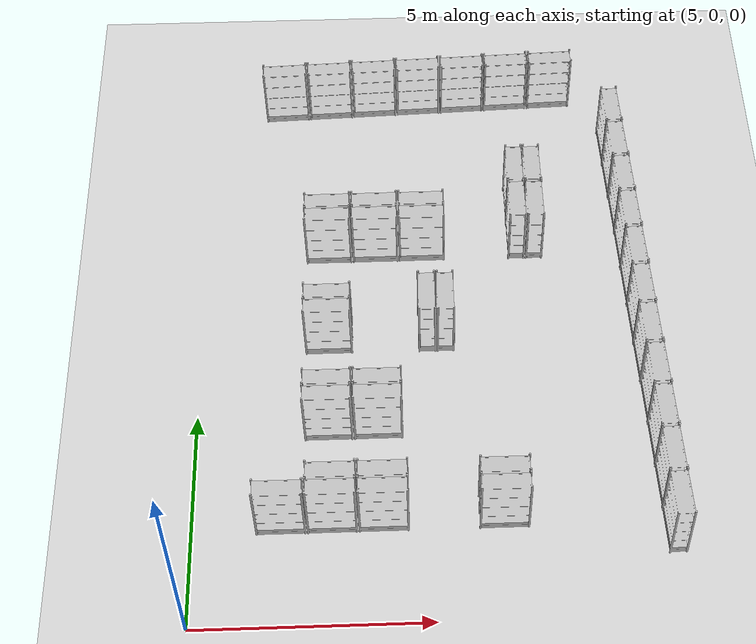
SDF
<sdf version="1.6">
 <world name="default">
  <model name="ground_plane">
   <static>1</static>
   <link name="link">
    <collision name="collision">
     <geometry><plane><normal>0 0 1</normal><size>100 100</size></plane></geometry>
     <surface>
      <contact><collide_bitmask>65535</collide_bitmask></contact>
      <friction><ode><mu>1000</mu><mu2>1000</mu2></ode></friction>
     </surface>
    </collision>
    <visual name="visual">
     <cast_shadows>0</cast_shadows>
     <geometry><plane><normal>0 0 1</normal><size>100 100</size></plane></geometry>
     <material>
      <script><uri>file://media/materials/scripts/gazebo.material</uri><name>Gazebo/Grey</name></script>
     </material>
    </visual>
   </link>
  </model>
  <model name="store_shelf_moduled_0">
   <link name="link">
    <collision name="collision">
     <geometry><mesh><uri>model://store_shelf_moduled/meshes/store_shelf_moduled.dae</uri></mesh></geometry>
    </collision>
    <visual name="visual">
     <geometry><mesh><uri>model://store_shelf_moduled/meshes/store_shelf_moduled.dae</uri></mesh></geometry>
    </visual>
    <inertial>
     <mass>1000</mass>
     <inertia>
      <ixx>840083</ixx>
      <ixy>0</ixy>
      <ixz>0</ixz>
      <iyy>475500</iyy>
      <iyz>0</iyz>
      <izz>1.30208e+06</izz>
     </inertia>
    </inertial>
   </link>
   <static>1</static>
   <pose>15.15008 1.396037 0 0 0 1.610436</pose>
  </model>
  <model name="store_shelf_moduled_1">
   <link name="link">
    <collision name="collision">
     <geometry><mesh><uri>model://store_shelf_moduled/meshes/store_shelf_moduled.dae</uri></mesh></geometry>
    </collision>
    <visual name="visual">
     <geometry><mesh><uri>model://store_shelf_moduled/meshes/store_shelf_moduled.dae</uri></mesh></geometry>
    </visual>
    <inertial>
     <mass>1000</mass>
     <inertia>
      <ixx>840083</ixx>
      <ixy>0</ixy>
      <ixz>0</ixz>
      <iyy>475500</iyy>
      <iyz>0</iyz>
      <izz>1.30208e+06</izz>
     </inertia>
    </inertial>
   </link>
   <static>1</static>
   <pose>15.11008 2.456037 0 0 0 1.610436</pose>
  </model>
  <model name="store_shelf_moduled_2">
   <link name="link">
    <collision name="collision">
     <geometry><mesh><uri>model://store_shelf_moduled/meshes/store_shelf_moduled.dae</uri></mesh></geometry>
    </collision>
    <visual name="visual">
     <geometry><mesh><uri>model://store_shelf_moduled/meshes/store_shelf_moduled.dae</uri></mesh></geometry>
    </visual>
    <inertial>
     <mass>1000</mass>
     <inertia>
      <ixx>840083</ixx>
      <ixy>0</ixy>
      <ixz>0</ixz>
      <iyy>475500</iyy>
      <iyz>0</iyz>
      <izz>1.30208e+06</izz>
     </inertia>
    </inertial>
   </link>
   <static>1</static>
   <pose>15.07008 3.516037 0 0 0 1.610436</pose>
  </model>
  <model name="store_shelf_moduled_3">
   <link name="link">
    <collision name="collision">
     <geometry><mesh><uri>model://store_shelf_moduled/meshes/store_shelf_moduled.dae</uri></mesh></geometry>
    </collision>
    <visual name="visual">
     <geometry><mesh><uri>model://store_shelf_moduled/meshes/store_shelf_moduled.dae</uri></mesh></geometry>
    </visual>
    <inertial>
     <mass>1000</mass>
     <inertia>
      <ixx>840083</ixx>
      <ixy>0</ixy>
      <ixz>0</ixz>
      <iyy>475500</iyy>
      <iyz>0</iyz>
      <izz>1.30208e+06</izz>
     </inertia>
    </inertial>
   </link>
   <static>1</static>
   <pose>15.03008 4.576037 0 0 0 1.610436</pose>
  </model>
  <model name="store_shelf_moduled_4">
   <link name="link">
    <collision name="collision">
     <geometry><mesh><uri>model://store_shelf_moduled/meshes/store_shelf_moduled.dae</uri></mesh></geometry>
    </collision>
    <visual name="visual">
     <geometry><mesh><uri>model://store_shelf_moduled/meshes/store_shelf_moduled.dae</uri></mesh></geometry>
    </visual>
    <inertial>
     <mass>1000</mass>
     <inertia>
      <ixx>840083</ixx>
      <ixy>0</ixy>
      <ixz>0</ixz>
      <iyy>475500</iyy>
      <iyz>0</iyz>
      <izz>1.30208e+06</izz>
     </inertia>
    </inertial>
   </link>
   <static>1</static>
   <pose>14.98008 5.636037 0 0 0 1.610436</pose>
  </model>
  <model name="store_shelf_moduled_5">
   <link name="link">
    <collision name="collision">
     <geometry><mesh><uri>model://store_shelf_moduled/meshes/store_shelf_moduled.dae</uri></mesh></geometry>
    </collision>
    <visual name="visual">
     <geometry><mesh><uri>model://store_shelf_moduled/meshes/store_shelf_moduled.dae</uri></mesh></geometry>
    </visual>
    <inertial>
     <mass>1000</mass>
     <inertia>
      <ixx>840083</ixx>
      <ixy>0</ixy>
      <ixz>0</ixz>
      <iyy>475500</iyy>
      <iyz>0</iyz>
      <izz>1.30208e+06</izz>
     </inertia>
    </inertial>
   </link>
   <static>1</static>
   <pose>14.94008 6.696037 0 0 0 1.610436</pose>
  </model>
  <model name="store_shelf_moduled_6">
   <link name="link">
    <collision name="collision">
     <geometry><mesh><uri>model://store_shelf_moduled/meshes/store_shelf_moduled.dae</uri></mesh></geometry>
    </collision>
    <visual name="visual">
     <geometry><mesh><uri>model://store_shelf_moduled/meshes/store_shelf_moduled.dae</uri></mesh></geometry>
    </visual>
    <inertial>
     <mass>1000</mass>
     <inertia>
      <ixx>840083</ixx>
      <ixy>0</ixy>
      <ixz>0</ixz>
      <iyy>475500</iyy>
      <iyz>0</iyz>
      <izz>1.30208e+06</izz>
     </inertia>
    </inertial>
   </link>
   <static>1</static>
   <pose>14.90008 7.756037 0 0 0 1.610436</pose>
  </model>
  <model name="store_shelf_moduled_7">
   <link name="link">
    <collision name="collision">
     <geometry><mesh><uri>model://store_shelf_moduled/meshes/store_shelf_moduled.dae</uri></mesh></geometry>
    </collision>
    <visual name="visual">
     <geometry><mesh><uri>model://store_shelf_moduled/meshes/store_shelf_moduled.dae</uri></mesh></geometry>
    </visual>
    <inertial>
     <mass>1000</mass>
     <inertia>
      <ixx>840083</ixx>
      <ixy>0</ixy>
      <ixz>0</ixz>
      <iyy>475500</iyy>
      <iyz>0</iyz>
      <izz>1.30208e+06</izz>
     </inertia>
    </inertial>
   </link>
   <static>1</static>
   <pose>14.86008 8.816037 0 0 0 1.610436</pose>
  </model>
  <model name="store_shelf_moduled_8">
   <link name="link">
    <collision name="collision">
     <geometry><mesh><uri>model://store_shelf_moduled/meshes/store_shelf_moduled.dae</uri></mesh></geometry>
    </collision>
    <visual name="visual">
     <geometry><mesh><uri>model://store_shelf_moduled/meshes/store_shelf_moduled.dae</uri></mesh></geometry>
    </visual>
    <inertial>
     <mass>1000</mass>
     <inertia>
      <ixx>840083</ixx>
      <ixy>0</ixy>
      <ixz>0</ixz>
      <iyy>475500</iyy>
      <iyz>0</iyz>
      <izz>1.30208e+06</izz>
     </inertia>
    </inertial>
   </link>
   <static>1</static>
   <pose>14.82008 9.876037 0 0 0 1.610436</pose>
  </model>
  <model name="store_shelf_moduled_9">
   <link name="link">
    <collision name="collision">
     <geometry><mesh><uri>model://store_shelf_moduled/meshes/store_shelf_moduled.dae</uri></mesh></geometry>
    </collision>
    <visual name="visual">
     <geometry><mesh><uri>model://store_shelf_moduled/meshes/store_shelf_moduled.dae</uri></mesh></geometry>
    </visual>
    <inertial>
     <mass>1000</mass>
     <inertia>
      <ixx>840083</ixx>
      <ixy>0</ixy>
      <ixz>0</ixz>
      <iyy>475500</iyy>
      <iyz>0</iyz>
      <izz>1.30208e+06</izz>
     </inertia>
    </inertial>
   </link>
   <static>1</static>
   <pose>14.77008 10.93604 0 0 0 1.610436</pose>
  </model>
  <model name="store_shelf_moduled_10">
   <link name="link">
    <collision name="collision">
     <geometry><mesh><uri>model://store_shelf_moduled/meshes/store_shelf_moduled.dae</uri></mesh></geometry>
    </collision>
    <visual name="visual">
     <geometry><mesh><uri>model://store_shelf_moduled/meshes/store_shelf_moduled.dae</uri></mesh></geometry>
    </visual>
    <inertial>
     <mass>1000</mass>
     <inertia>
      <ixx>840083</ixx>
      <ixy>0</ixy>
      <ixz>0</ixz>
      <iyy>475500</iyy>
      <iyz>0</iyz>
      <izz>1.30208e+06</izz>
     </inertia>
    </inertial>
   </link>
   <static>1</static>
   <pose>14.73008 11.99604 0 0 0 1.610436</pose>
  </model>
  <model name="store_shelf_moduled_11">
   <link name="link">
    <collision name="collision">
     <geometry><mesh><uri>model://store_shelf_moduled/meshes/store_shelf_moduled.dae</uri></mesh></geometry>
    </collision>
    <visual name="visual">
     <geometry><mesh><uri>model://store_shelf_moduled/meshes/store_shelf_moduled.dae</uri></mesh></geometry>
    </visual>
    <inertial>
     <mass>1000</mass>
     <inertia>
      <ixx>840083</ixx>
      <ixy>0</ixy>
      <ixz>0</ixz>
      <iyy>475500</iyy>
      <iyz>0</iyz>
      <izz>1.30208e+06</izz>
     </inertia>
    </inertial>
   </link>
   <static>1</static>
   <pose>13.68382 14.32007 0 0 0 -3.10336</pose>
  </model>
  <model name="store_shelf_moduled_12">
   <link name="link">
    <collision name="collision">
     <geometry><mesh><uri>model://store_shelf_moduled/meshes/store_shelf_moduled.dae</uri></mesh></geometry>
    </collision>
    <visual name="visual">
     <geometry><mesh><uri>model://store_shelf_moduled/meshes/store_shelf_moduled.dae</uri></mesh></geometry>
    </visual>
    <inertial>
     <mass>1000</mass>
     <inertia>
      <ixx>840083</ixx>
      <ixy>0</ixy>
      <ixz>0</ixz>
      <iyy>475500</iyy>
      <iyz>0</iyz>
      <izz>1.30208e+06</izz>
     </inertia>
    </inertial>
   </link>
   <static>1</static>
   <pose>12.62382 14.28007 0 0 0 -3.10336</pose>
  </model>
  <model name="store_shelf_moduled_13">
   <link name="link">
    <collision name="collision">
     <geometry><mesh><uri>model://store_shelf_moduled/meshes/store_shelf_moduled.dae</uri></mesh></geometry>
    </collision>
    <visual name="visual">
     <geometry><mesh><uri>model://store_shelf_moduled/meshes/store_shelf_moduled.dae</uri></mesh></geometry>
    </visual>
    <inertial>
     <mass>1000</mass>
     <inertia>
      <ixx>840083</ixx>
      <ixy>0</ixy>
      <ixz>0</ixz>
      <iyy>475500</iyy>
      <iyz>0</iyz>
      <izz>1.30208e+06</izz>
     </inertia>
    </inertial>
   </link>
   <static>1</static>
   <pose>11.56382 14.24007 0 0 0 -3.10336</pose>
  </model>
  <model name="store_shelf_moduled_14">
   <link name="link">
    <collision name="collision">
     <geometry><mesh><uri>model://store_shelf_moduled/meshes/store_shelf_moduled.dae</uri></mesh></geometry>
    </collision>
    <visual name="visual">
     <geometry><mesh><uri>model://store_shelf_moduled/meshes/store_shelf_moduled.dae</uri></mesh></geometry>
    </visual>
    <inertial>
     <mass>1000</mass>
     <inertia>
      <ixx>840083</ixx>
      <ixy>0</ixy>
      <ixz>0</ixz>
      <iyy>475500</iyy>
      <iyz>0</iyz>
      <izz>1.30208e+06</izz>
     </inertia>
    </inertial>
   </link>
   <static>1</static>
   <pose>10.50382 14.20007 0 0 0 -3.10336</pose>
  </model>
  <model name="store_shelf_moduled_15">
   <link name="link">
    <collision name="collision">
     <geometry><mesh><uri>model://store_shelf_moduled/meshes/store_shelf_moduled.dae</uri></mesh></geometry>
    </collision>
    <visual name="visual">
     <geometry><mesh><uri>model://store_shelf_moduled/meshes/store_shelf_moduled.dae</uri></mesh></geometry>
    </visual>
    <inertial>
     <mass>1000</mass>
     <inertia>
      <ixx>840083</ixx>
      <ixy>0</ixy>
      <ixz>0</ixz>
      <iyy>475500</iyy>
      <iyz>0</iyz>
      <izz>1.30208e+06</izz>
     </inertia>
    </inertial>
   </link>
   <static>1</static>
   <pose>9.443823 14.16007 0 0 0 -3.10336</pose>
  </model>
  <model name="store_shelf_moduled_16">
   <link name="link">
    <collision name="collision">
     <geometry><mesh><uri>model://store_shelf_moduled/meshes/store_shelf_moduled.dae</uri></mesh></geometry>
    </collision>
    <visual name="visual">
     <geometry><mesh><uri>model://store_shelf_moduled/meshes/store_shelf_moduled.dae</uri></mesh></geometry>
    </visual>
    <inertial>
     <mass>1000</mass>
     <inertia>
      <ixx>840083</ixx>
      <ixy>0</ixy>
      <ixz>0</ixz>
      <iyy>475500</iyy>
      <iyz>0</iyz>
      <izz>1.30208e+06</izz>
     </inertia>
    </inertial>
   </link>
   <static>1</static>
   <pose>8.383822 14.12007 0 0 0 -3.10336</pose>
  </model>
  <model name="store_shelf_moduled_17">
   <link name="link">
    <collision name="collision">
     <geometry><mesh><uri>model://store_shelf_moduled/meshes/store_shelf_moduled.dae</uri></mesh></geometry>
    </collision>
    <visual name="visual">
     <geometry><mesh><uri>model://store_shelf_moduled/meshes/store_shelf_moduled.dae</uri></mesh></geometry>
    </visual>
    <inertial>
     <mass>1000</mass>
     <inertia>
      <ixx>840083</ixx>
      <ixy>0</ixy>
      <ixz>0</ixz>
      <iyy>475500</iyy>
      <iyz>0</iyz>
      <izz>1.30208e+06</izz>
     </inertia>
    </inertial>
   </link>
   <static>1</static>
   <pose>7.323822 14.08007 0 0 0 -3.10336</pose>
  </model>
  <model name="store_shelf_moduled_33">
   <link name="link">
    <collision name="collision">
     <geometry><mesh><uri>model://store_shelf_moduled/meshes/store_shelf_moduled.dae</uri></mesh></geometry>
    </collision>
    <visual name="visual">
     <geometry><mesh><uri>model://store_shelf_moduled/meshes/store_shelf_moduled.dae</uri></mesh></geometry>
    </visual>
    <inertial>
     <mass>1000</mass>
     <inertia>
      <ixx>840083</ixx>
      <ixy>0</ixy>
      <ixz>0</ixz>
      <iyy>475500</iyy>
      <iyz>0</iyz>
      <izz>1.30208e+06</izz>
     </inertia>
    </inertial>
   </link>
   <static>1</static>
   <pose>7.29 4.75 0 0 0 0</pose>
  </model>
  <model name="store_shelf_moduled_34">
   <link name="link">
    <collision name="collision">
     <geometry><mesh><uri>model://store_shelf_moduled/meshes/store_shelf_moduled.dae</uri></mesh></geometry>
    </collision>
    <visual name="visual">
     <geometry><mesh><uri>model://store_shelf_moduled/meshes/store_shelf_moduled.dae</uri></mesh></geometry>
    </visual>
    <inertial>
     <mass>1000</mass>
     <inertia>
      <ixx>840083</ixx>
      <ixy>0</ixy>
      <ixz>0</ixz>
      <iyy>475500</iyy>
      <iyz>0</iyz>
      <izz>1.30208e+06</izz>
     </inertia>
    </inertial>
   </link>
   <static>1</static>
   <pose>8.35 4.75 0 0 0 -3.141593</pose>
  </model>
  <model name="store_shelf_moduled_35">
   <link name="link">
    <collision name="collision">
     <geometry><mesh><uri>model://store_shelf_moduled/meshes/store_shelf_moduled.dae</uri></mesh></geometry>
    </collision>
    <visual name="visual">
     <geometry><mesh><uri>model://store_shelf_moduled/meshes/store_shelf_moduled.dae</uri></mesh></geometry>
    </visual>
    <inertial>
     <mass>1000</mass>
     <inertia>
      <ixx>840083</ixx>
      <ixy>0</ixy>
      <ixz>0</ixz>
      <iyy>475500</iyy>
      <iyz>0</iyz>
      <izz>1.30208e+06</izz>
     </inertia>
    </inertial>
   </link>
   <static>1</static>
   <pose>8.35 4.75 0 0 0 0</pose>
  </model>
  <model name="store_shelf_moduled_36">
   <link name="link">
    <collision name="collision">
     <geometry><mesh><uri>model://store_shelf_moduled/meshes/store_shelf_moduled.dae</uri></mesh></geometry>
    </collision>
    <visual name="visual">
     <geometry><mesh><uri>model://store_shelf_moduled/meshes/store_shelf_moduled.dae</uri></mesh></geometry>
    </visual>
    <inertial>
     <mass>1000</mass>
     <inertia>
      <ixx>840083</ixx>
      <ixy>0</ixy>
      <ixz>0</ixz>
      <iyy>475500</iyy>
      <iyz>0</iyz>
      <izz>1.30208e+06</izz>
     </inertia>
    </inertial>
   </link>
   <static>1</static>
   <pose>9.41 4.75 0 0 0 -3.141593</pose>
  </model>
  <model name="store_shelf_moduled_37">
   <link name="link">
    <collision name="collision">
     <geometry><mesh><uri>model://store_shelf_moduled/meshes/store_shelf_moduled.dae</uri></mesh></geometry>
    </collision>
    <visual name="visual">
     <geometry><mesh><uri>model://store_shelf_moduled/meshes/store_shelf_moduled.dae</uri></mesh></geometry>
    </visual>
    <inertial>
     <mass>1000</mass>
     <inertia>
      <ixx>840083</ixx>
      <ixy>0</ixy>
      <ixz>0</ixz>
      <iyy>475500</iyy>
      <iyz>0</iyz>
      <izz>1.30208e+06</izz>
     </inertia>
    </inertial>
   </link>
   <static>1</static>
   <pose>7.29 9.57 0 0 0 0</pose>
  </model>
  <model name="store_shelf_moduled_38">
   <link name="link">
    <collision name="collision">
     <geometry><mesh><uri>model://store_shelf_moduled/meshes/store_shelf_moduled.dae</uri></mesh></geometry>
    </collision>
    <visual name="visual">
     <geometry><mesh><uri>model://store_shelf_moduled/meshes/store_shelf_moduled.dae</uri></mesh></geometry>
    </visual>
    <inertial>
     <mass>1000</mass>
     <inertia>
      <ixx>840083</ixx>
      <ixy>0</ixy>
      <ixz>0</ixz>
      <iyy>475500</iyy>
      <iyz>0</iyz>
      <izz>1.30208e+06</izz>
     </inertia>
    </inertial>
   </link>
   <static>1</static>
   <pose>8.35 9.57 0 0 0 -3.141593</pose>
  </model>
  <model name="store_shelf_moduled_39">
   <link name="link">
    <collision name="collision">
     <geometry><mesh><uri>model://store_shelf_moduled/meshes/store_shelf_moduled.dae</uri></mesh></geometry>
    </collision>
    <visual name="visual">
     <geometry><mesh><uri>model://store_shelf_moduled/meshes/store_shelf_moduled.dae</uri></mesh></geometry>
    </visual>
    <inertial>
     <mass>1000</mass>
     <inertia>
      <ixx>840083</ixx>
      <ixy>0</ixy>
      <ixz>0</ixz>
      <iyy>475500</iyy>
      <iyz>0</iyz>
      <izz>1.30208e+06</izz>
     </inertia>
    </inertial>
   </link>
   <static>1</static>
   <pose>8.35 9.57 0 0 0 0</pose>
  </model>
  <model name="store_shelf_moduled_40">
   <link name="link">
    <collision name="collision">
     <geometry><mesh><uri>model://store_shelf_moduled/meshes/store_shelf_moduled.dae</uri></mesh></geometry>
    </collision>
    <visual name="visual">
     <geometry><mesh><uri>model://store_shelf_moduled/meshes/store_shelf_moduled.dae</uri></mesh></geometry>
    </visual>
    <inertial>
     <mass>1000</mass>
     <inertia>
      <ixx>840083</ixx>
      <ixy>0</ixy>
      <ixz>0</ixz>
      <iyy>475500</iyy>
      <iyz>0</iyz>
      <izz>1.30208e+06</izz>
     </inertia>
    </inertial>
   </link>
   <static>1</static>
   <pose>9.41 9.57 0 0 0 -3.141593</pose>
  </model>
  <model name="store_shelf_moduled_41">
   <link name="link">
    <collision name="collision">
     <geometry><mesh><uri>model://store_shelf_moduled/meshes/store_shelf_moduled.dae</uri></mesh></geometry>
    </collision>
    <visual name="visual">
     <geometry><mesh><uri>model://store_shelf_moduled/meshes/store_shelf_moduled.dae</uri></mesh></geometry>
    </visual>
    <inertial>
     <mass>1000</mass>
     <inertia>
      <ixx>840083</ixx>
      <ixy>0</ixy>
      <ixz>0</ixz>
      <iyy>475500</iyy>
      <iyz>0</iyz>
      <izz>1.30208e+06</izz>
     </inertia>
    </inertial>
   </link>
   <static>1</static>
   <pose>9.41 9.57 0 0 0 0</pose>
  </model>
  <model name="store_shelf_moduled_42">
   <link name="link">
    <collision name="collision">
     <geometry><mesh><uri>model://store_shelf_moduled/meshes/store_shelf_moduled.dae</uri></mesh></geometry>
    </collision>
    <visual name="visual">
     <geometry><mesh><uri>model://store_shelf_moduled/meshes/store_shelf_moduled.dae</uri></mesh></geometry>
    </visual>
    <inertial>
     <mass>1000</mass>
     <inertia>
      <ixx>840083</ixx>
      <ixy>0</ixy>
      <ixz>0</ixz>
      <iyy>475500</iyy>
      <iyz>0</iyz>
      <izz>1.30208e+06</izz>
     </inertia>
    </inertial>
   </link>
   <static>1</static>
   <pose>10.47 9.57 0 0 0 -3.141593</pose>
  </model>
  <model name="store_shelf_moduled_52">
   <link name="link">
    <collision name="collision">
     <geometry><mesh><uri>model://store_shelf_moduled/meshes/store_shelf_moduled.dae</uri></mesh></geometry>
    </collision>
    <visual name="visual">
     <geometry><mesh><uri>model://store_shelf_moduled/meshes/store_shelf_moduled.dae</uri></mesh></geometry>
    </visual>
    <inertial>
     <mass>1000</mass>
     <inertia>
      <ixx>840083</ixx>
      <ixy>0</ixy>
      <ixz>0</ixz>
      <iyy>475500</iyy>
      <iyz>0</iyz>
      <izz>1.30208e+06</izz>
     </inertia>
    </inertial>
   </link>
   <static>1</static>
   <pose>7.37 2.49 0 0 0 -3.141593</pose>
  </model>
  <model name="store_shelf_moduled_53">
   <link name="link">
    <collision name="collision">
     <geometry><mesh><uri>model://store_shelf_moduled/meshes/store_shelf_moduled.dae</uri></mesh></geometry>
    </collision>
    <visual name="visual">
     <geometry><mesh><uri>model://store_shelf_moduled/meshes/store_shelf_moduled.dae</uri></mesh></geometry>
    </visual>
    <inertial>
     <mass>1000</mass>
     <inertia>
      <ixx>840083</ixx>
      <ixy>0</ixy>
      <ixz>0</ixz>
      <iyy>475500</iyy>
      <iyz>0</iyz>
      <izz>1.30208e+06</izz>
     </inertia>
    </inertial>
   </link>
   <static>1</static>
   <pose>7.37 2.49 0 0 0 0</pose>
  </model>
  <model name="store_shelf_moduled_54">
   <link name="link">
    <collision name="collision">
     <geometry><mesh><uri>model://store_shelf_moduled/meshes/store_shelf_moduled.dae</uri></mesh></geometry>
    </collision>
    <visual name="visual">
     <geometry><mesh><uri>model://store_shelf_moduled/meshes/store_shelf_moduled.dae</uri></mesh></geometry>
    </visual>
    <inertial>
     <mass>1000</mass>
     <inertia>
      <ixx>840083</ixx>
      <ixy>0</ixy>
      <ixz>0</ixz>
      <iyy>475500</iyy>
      <iyz>0</iyz>
      <izz>1.30208e+06</izz>
     </inertia>
    </inertial>
   </link>
   <static>1</static>
   <pose>8.43 2.49 0 0 0 -3.141593</pose>
  </model>
  <model name="store_shelf_moduled_55">
   <link name="link">
    <collision name="collision">
     <geometry><mesh><uri>model://store_shelf_moduled/meshes/store_shelf_moduled.dae</uri></mesh></geometry>
    </collision>
    <visual name="visual">
     <geometry><mesh><uri>model://store_shelf_moduled/meshes/store_shelf_moduled.dae</uri></mesh></geometry>
    </visual>
    <inertial>
     <mass>1000</mass>
     <inertia>
      <ixx>840083</ixx>
      <ixy>0</ixy>
      <ixz>0</ixz>
      <iyy>475500</iyy>
      <iyz>0</iyz>
      <izz>1.30208e+06</izz>
     </inertia>
    </inertial>
   </link>
   <static>1</static>
   <pose>8.43 2.49 0 0 0 0</pose>
  </model>
  <model name="store_shelf_moduled_56">
   <link name="link">
    <collision name="collision">
     <geometry><mesh><uri>model://store_shelf_moduled/meshes/store_shelf_moduled.dae</uri></mesh></geometry>
    </collision>
    <visual name="visual">
     <geometry><mesh><uri>model://store_shelf_moduled/meshes/store_shelf_moduled.dae</uri></mesh></geometry>
    </visual>
    <inertial>
     <mass>1000</mass>
     <inertia>
      <ixx>840083</ixx>
      <ixy>0</ixy>
      <ixz>0</ixz>
      <iyy>475500</iyy>
      <iyz>0</iyz>
      <izz>1.30208e+06</izz>
     </inertia>
    </inertial>
   </link>
   <static>1</static>
   <pose>9.49 2.49 0 0 0 -3.141593</pose>
  </model>
  <model name="store_shelf_moduled_61">
   <link name="link">
    <collision name="collision">
     <geometry><mesh><uri>model://store_shelf_moduled/meshes/store_shelf_moduled.dae</uri></mesh></geometry>
    </collision>
    <visual name="visual">
     <geometry><mesh><uri>model://store_shelf_moduled/meshes/store_shelf_moduled.dae</uri></mesh></geometry>
    </visual>
    <inertial>
     <mass>1000</mass>
     <inertia>
      <ixx>840083</ixx>
      <ixy>0</ixy>
      <ixz>0</ixz>
      <iyy>475500</iyy>
      <iyz>0</iyz>
      <izz>1.30208e+06</izz>
     </inertia>
    </inertial>
   </link>
   <static>1</static>
   <pose>7.29 7.01 0 0 0 0</pose>
  </model>
  <model name="store_shelf_moduled_62">
   <link name="link">
    <collision name="collision">
     <geometry><mesh><uri>model://store_shelf_moduled/meshes/store_shelf_moduled.dae</uri></mesh></geometry>
    </collision>
    <visual name="visual">
     <geometry><mesh><uri>model://store_shelf_moduled/meshes/store_shelf_moduled.dae</uri></mesh></geometry>
    </visual>
    <inertial>
     <mass>1000</mass>
     <inertia>
      <ixx>840083</ixx>
      <ixy>0</ixy>
      <ixz>0</ixz>
      <iyy>475500</iyy>
      <iyz>0</iyz>
      <izz>1.30208e+06</izz>
     </inertia>
    </inertial>
   </link>
   <static>1</static>
   <pose>8.35 7.01 0 0 0 -3.141593</pose>
  </model>
  <model name="store_shelf_moduled_69">
   <link name="link">
    <collision name="collision">
     <geometry><mesh><uri>model://store_shelf_moduled/meshes/store_shelf_moduled.dae</uri></mesh></geometry>
    </collision>
    <visual name="visual">
     <geometry><mesh><uri>model://store_shelf_moduled/meshes/store_shelf_moduled.dae</uri></mesh></geometry>
    </visual>
    <inertial>
     <mass>1000</mass>
     <inertia>
      <ixx>840083</ixx>
      <ixy>0</ixy>
      <ixz>0</ixz>
      <iyy>475500</iyy>
      <iyz>0</iyz>
      <izz>1.30208e+06</izz>
     </inertia>
    </inertial>
   </link>
   <static>1</static>
   <pose>10.19 6.59 0 0 0 1.570796</pose>
  </model>
  <model name="store_shelf_moduled_70">
   <link name="link">
    <collision name="collision">
     <geometry><mesh><uri>model://store_shelf_moduled/meshes/store_shelf_moduled.dae</uri></mesh></geometry>
    </collision>
    <visual name="visual">
     <geometry><mesh><uri>model://store_shelf_moduled/meshes/store_shelf_moduled.dae</uri></mesh></geometry>
    </visual>
    <inertial>
     <mass>1000</mass>
     <inertia>
      <ixx>840083</ixx>
      <ixy>0</ixy>
      <ixz>0</ixz>
      <iyy>475500</iyy>
      <iyz>0</iyz>
      <izz>1.30208e+06</izz>
     </inertia>
    </inertial>
   </link>
   <static>1</static>
   <pose>10.19 7.65 0 0 0 -1.570796</pose>
  </model>
  <model name="store_shelf_moduled_71">
   <link name="link">
    <collision name="collision">
     <geometry><mesh><uri>model://store_shelf_moduled/meshes/store_shelf_moduled.dae</uri></mesh></geometry>
    </collision>
    <visual name="visual">
     <geometry><mesh><uri>model://store_shelf_moduled/meshes/store_shelf_moduled.dae</uri></mesh></geometry>
    </visual>
    <inertial>
     <mass>1000</mass>
     <inertia>
      <ixx>840083</ixx>
      <ixy>0</ixy>
      <ixz>0</ixz>
      <iyy>475500</iyy>
      <iyz>0</iyz>
      <izz>1.30208e+06</izz>
     </inertia>
    </inertial>
   </link>
   <static>1</static>
   <pose>10.91 2.49 0 0 0 0</pose>
  </model>
  <model name="store_shelf_moduled_72">
   <link name="link">
    <collision name="collision">
     <geometry><mesh><uri>model://store_shelf_moduled/meshes/store_shelf_moduled.dae</uri></mesh></geometry>
    </collision>
    <visual name="visual">
     <geometry><mesh><uri>model://store_shelf_moduled/meshes/store_shelf_moduled.dae</uri></mesh></geometry>
    </visual>
    <inertial>
     <mass>1000</mass>
     <inertia>
      <ixx>840083</ixx>
      <ixy>0</ixy>
      <ixz>0</ixz>
      <iyy>475500</iyy>
      <iyz>0</iyz>
      <izz>1.30208e+06</izz>
     </inertia>
    </inertial>
   </link>
   <static>1</static>
   <pose>11.97 2.49 0 0 0 -3.141593</pose>
  </model>
  <model name="store_shelf_moduled_77">
   <link name="link">
    <collision name="collision">
     <geometry><mesh><uri>model://store_shelf_moduled/meshes/store_shelf_moduled.dae</uri></mesh></geometry>
    </collision>
    <visual name="visual">
     <geometry><mesh><uri>model://store_shelf_moduled/meshes/store_shelf_moduled.dae</uri></mesh></geometry>
    </visual>
    <inertial>
     <mass>1000</mass>
     <inertia>
      <ixx>840083</ixx>
      <ixy>0</ixy>
      <ixz>0</ixz>
      <iyy>475500</iyy>
      <iyz>0</iyz>
      <izz>1.30208e+06</izz>
     </inertia>
    </inertial>
   </link>
   <static>1</static>
   <pose>12.31 9.15 0 0 0 1.570796</pose>
  </model>
  <model name="store_shelf_moduled_78">
   <link name="link">
    <collision name="collision">
     <geometry><mesh><uri>model://store_shelf_moduled/meshes/store_shelf_moduled.dae</uri></mesh></geometry>
    </collision>
    <visual name="visual">
     <geometry><mesh><uri>model://store_shelf_moduled/meshes/store_shelf_moduled.dae</uri></mesh></geometry>
    </visual>
    <inertial>
     <mass>1000</mass>
     <inertia>
      <ixx>840083</ixx>
      <ixy>0</ixy>
      <ixz>0</ixz>
      <iyy>475500</iyy>
      <iyz>0</iyz>
      <izz>1.30208e+06</izz>
     </inertia>
    </inertial>
   </link>
   <static>1</static>
   <pose>12.31 10.21 0 0 0 -1.570796</pose>
  </model>
  <model name="store_shelf_moduled_79">
   <link name="link">
    <collision name="collision">
     <geometry><mesh><uri>model://store_shelf_moduled/meshes/store_shelf_moduled.dae</uri></mesh></geometry>
    </collision>
    <visual name="visual">
     <geometry><mesh><uri>model://store_shelf_moduled/meshes/store_shelf_moduled.dae</uri></mesh></geometry>
    </visual>
    <inertial>
     <mass>1000</mass>
     <inertia>
      <ixx>840083</ixx>
      <ixy>0</ixy>
      <ixz>0</ixz>
      <iyy>475500</iyy>
      <iyz>0</iyz>
      <izz>1.30208e+06</izz>
     </inertia>
    </inertial>
   </link>
   <static>1</static>
   <pose>12.31 10.21 0 0 0 1.570796</pose>
  </model>
  <model name="store_shelf_moduled_80">
   <link name="link">
    <collision name="collision">
     <geometry><mesh><uri>model://store_shelf_moduled/meshes/store_shelf_moduled.dae</uri></mesh></geometry>
    </collision>
    <visual name="visual">
     <geometry><mesh><uri>model://store_shelf_moduled/meshes/store_shelf_moduled.dae</uri></mesh></geometry>
    </visual>
    <inertial>
     <mass>1000</mass>
     <inertia>
      <ixx>840083</ixx>
      <ixy>0</ixy>
      <ixz>0</ixz>
      <iyy>475500</iyy>
      <iyz>0</iyz>
      <izz>1.30208e+06</izz>
     </inertia>
    </inertial>
   </link>
   <static>1</static>
   <pose>12.31 11.27 0 0 0 -1.570796</pose>
  </model>
 </world>
</sdf>
